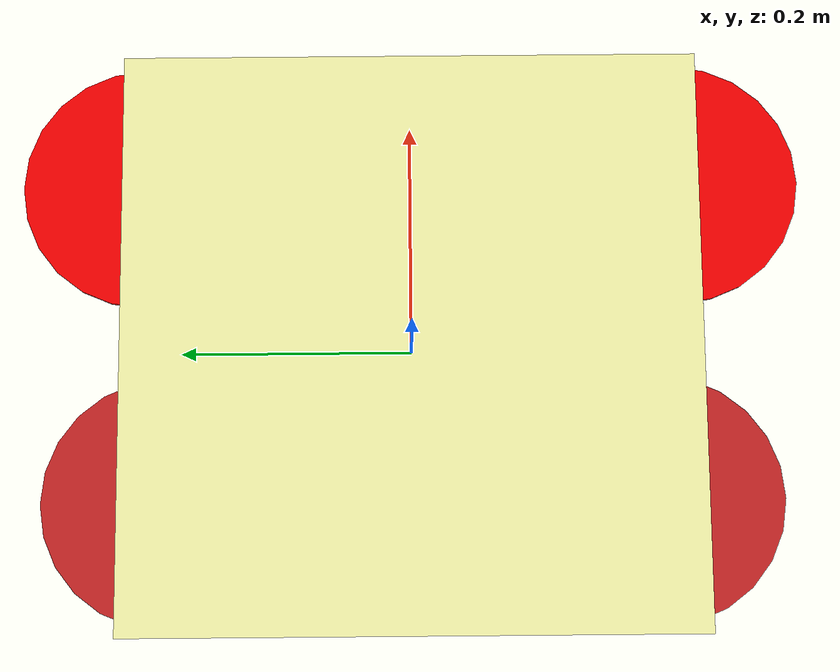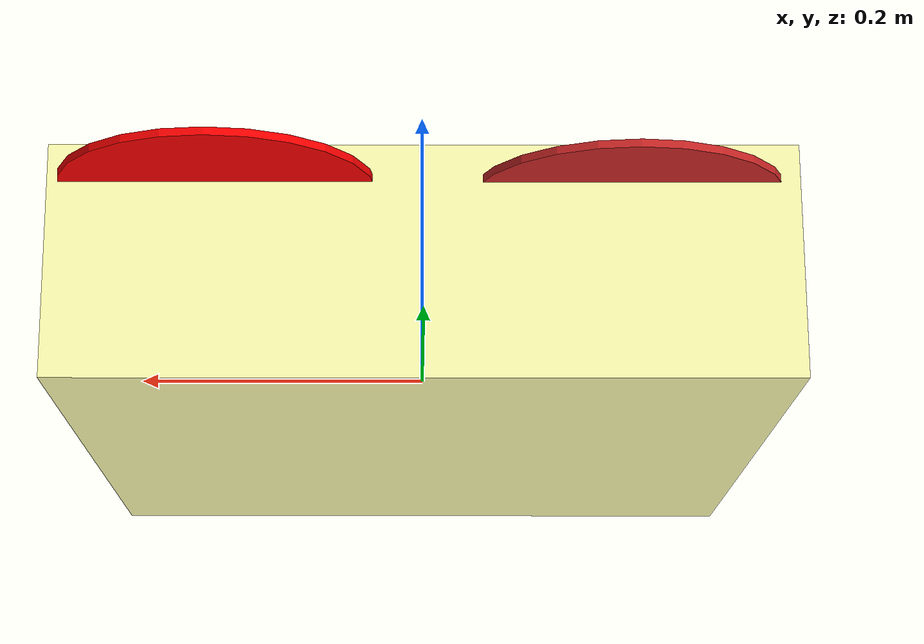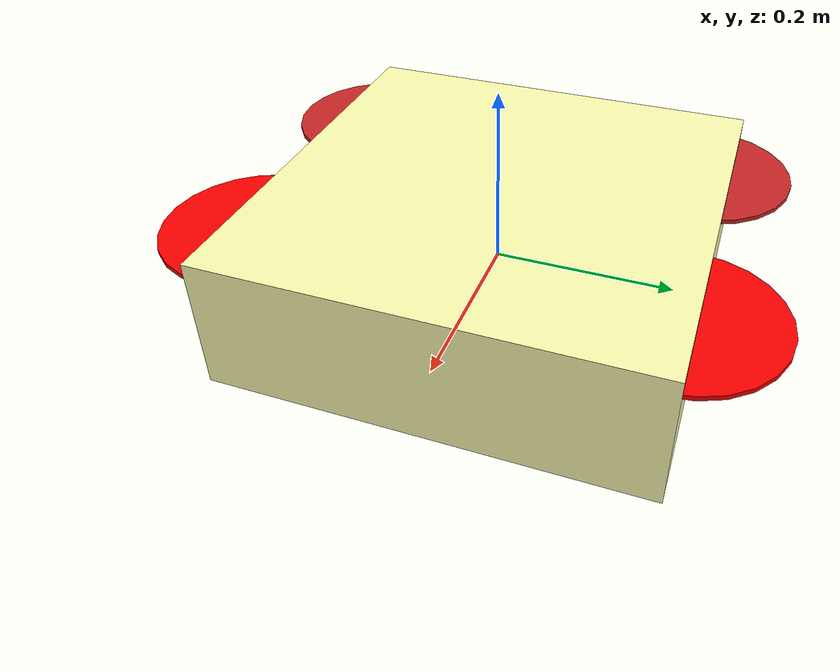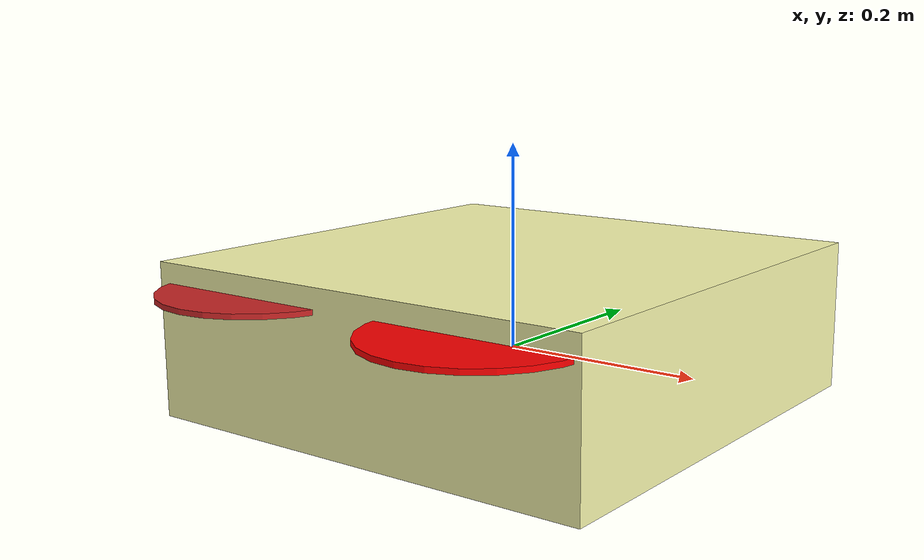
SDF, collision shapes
<?xml version="1.0" ?>
<sdf version="1.6">
    <model name="r2">
        <pose>0 0 0.05 0 0 0</pose>
        <link name="r2/base_link">
            <pose frame="">0 0 0 0 0 0</pose>
            <inertial>
                <pose frame="">0 0 0 0 -0 0</pose>
                <mass>1.5</mass>
                <inertia>
                    <ixx>0.0347563</ixx>
                    <ixy>0</ixy>
                    <ixz>0</ixz>
                    <iyy>0.07</iyy>
                    <iyz>0</iyz>
                    <izz>0.0977</izz>
                </inertia>
            </inertial>
            <collision name="r2/base_link_inertia_collision">
                <pose frame="">0 0 -0.03 0 0 0</pose>
                <geometry>
                    <box>
                        <size>0.47 0.47 0.15</size>
                    </box>
                </geometry>
            </collision>
            <visual name="r2/base_link_inertia_visual">
                <pose frame="base_frame">0 0 0 0 0 0</pose>
                <material>
                    <diffuse>1.0 1.0 0.7 1</diffuse>
                </material>
                <geometry>
                    <mesh>
                        <scale>1 1 1</scale>
                        <uri>meshes/x3.dae</uri>
                    </mesh>
                </geometry>
            </visual>
        </link>

        <link name="r2/rotor_0">
            <pose frame="">0.13 -0.22 0.023 0 -0 0</pose>
            <inertial>
                <pose frame="">0 0 0 0 -0 0</pose>
                <mass>0.005</mass>
                <inertia>
                    <ixx>9.75e-07</ixx>
                    <ixy>0</ixy>
                    <ixz>0</ixz>
                    <iyy>4.17041e-05</iyy>
                    <iyz>0</iyz>
                    <izz>4.26041e-05</izz>
                </inertia>
            </inertial>
            <collision name="r2/rotor_0_collision">
                <pose frame="">0 0 0 0 0 0</pose>
                <geometry>
                    <cylinder>
                        <length>0.005</length>
                        <radius>0.1</radius>
                    </cylinder>
                </geometry>
                <surface>
                    <contact>
                        <ode/>
                    </contact>
                    <friction>
                        <ode/>
                    </friction>
                </surface>
            </collision>
            <visual name="r2/rotor_0_visual">
                <pose frame="">0 0 0 0 -0 0</pose>
                <geometry>
                    <mesh>
                        <scale>0.1 0.1 0.1</scale>
                        <uri>meshes/propeller_ccw.dae</uri>
                    </mesh>
                </geometry>
                <material>
                    <diffuse>1 0 0 1</diffuse>
                </material>
            </visual>
            <gravity>1</gravity>
            <velocity_decay/>
        </link>
        <joint name="r2/rotor_0_joint" type="revolute">
            <child>r2/rotor_0</child>
            <parent>r2/base_link</parent>
            <axis>
                <xyz>0 0 1</xyz>
                <limit>
                    <lower>-1e+16</lower>
                    <upper>1e+16</upper>
                </limit>
                <dynamics>
                    <spring_reference>0</spring_reference>
                    <spring_stiffness>0</spring_stiffness>
                </dynamics>
                <use_parent_model_frame>1</use_parent_model_frame>
            </axis>
        </joint>
        <link name="r2/rotor_1">
            <pose frame="">-0.13 0.2 0.023 0 -0 0</pose>
            <inertial>
                <pose frame="">0 0 0 0 -0 0</pose>
                <mass>0.005</mass>
                <inertia>
                    <ixx>9.75e-07</ixx>
                    <ixy>0</ixy>
                    <ixz>0</ixz>
                    <iyy>4.17041e-05</iyy>
                    <iyz>0</iyz>
                    <izz>4.26041e-05</izz>
                </inertia>
            </inertial>
            <collision name="r2/rotor_1_collision">
                <pose frame="">0 0 0 0 -0 0</pose>
                <geometry>
                    <cylinder>
                        <length>0.005</length>
                        <radius>0.1</radius>
                    </cylinder>
                </geometry>
                <surface>
                    <contact>
                        <ode/>
                    </contact>
                    <friction>
                        <ode/>
                    </friction>
                </surface>
            </collision>
            <visual name="r2/rotor_1_visual">
                <pose frame="">0 0 0 0 -0 0</pose>
                <geometry>
                    <mesh>
                        <scale>0.1 0.1 0.1</scale>
                        <uri>meshes/propeller_ccw.dae</uri>
                    </mesh>
                </geometry>
                <material>
                    <script>
                        <name>Gazebo/Red</name>
                        <uri>file://media/materials/scripts/gazebo.material</uri>
                    </script>
                </material>
            </visual>
            <gravity>1</gravity>
            <velocity_decay/>
        </link>
        <joint name="r2/rotor_1_joint" type="revolute">
            <child>r2/rotor_1</child>
            <parent>r2/base_link</parent>
            <axis>
                <xyz>0 0 1</xyz>
                <limit>
                    <lower>-1e+16</lower>
                    <upper>1e+16</upper>
                </limit>
                <dynamics>
                    <spring_reference>0</spring_reference>
                    <spring_stiffness>0</spring_stiffness>
                </dynamics>
                <use_parent_model_frame>1</use_parent_model_frame>
            </axis>
        </joint>
        <link name="r2/rotor_2">
            <pose frame="">0.13 0.22 0.023 0 -0 0</pose>
            <inertial>
                <pose frame="">0 0 0 0 -0 0</pose>
                <mass>0.005</mass>
                <inertia>
                    <ixx>9.75e-07</ixx>
                    <ixy>0</ixy>
                    <ixz>0</ixz>
                    <iyy>4.17041e-05</iyy>
                    <iyz>0</iyz>
                    <izz>4.26041e-05</izz>
                </inertia>
            </inertial>
            <collision name="r2/rotor_2_collision">
                <pose frame="">0 0 0 0 -0 0</pose>
                <geometry>
                    <cylinder>
                        <length>0.005</length>
                        <radius>0.1</radius>
                    </cylinder>
                </geometry>
                <surface>
                    <contact>
                        <ode/>
                    </contact>
                    <friction>
                        <ode/>
                    </friction>
                </surface>
            </collision>
            <visual name="r2/rotor_2_visual">
                <pose frame="">0 0 0 0 -0 0</pose>
                <geometry>
                    <mesh>
                        <scale>0.1 0.1 0.1</scale>
                        <uri>meshes/propeller_ccw.dae</uri>
                    </mesh>
                </geometry>
                <material>
                    <diffuse>1 0 0 1</diffuse>
                </material>
            </visual>
            <gravity>1</gravity>
            <velocity_decay/>
        </link>
        <joint name="r2/rotor_2_joint" type="revolute">
            <child>r2/rotor_2</child>
            <parent>r2/base_link</parent>
            <axis>
                <xyz>0 0 1</xyz>
                <limit>
                    <lower>-1e+16</lower>
                    <upper>1e+16</upper>
                </limit>
                <dynamics>
                    <spring_reference>0</spring_reference>
                    <spring_stiffness>0</spring_stiffness>
                </dynamics>
                <use_parent_model_frame>1</use_parent_model_frame>
            </axis>
        </joint>
        <link name="r2/rotor_3">
            <pose frame="">-0.13 -0.2 0.023 0 -0 0</pose>
            <inertial>
                <pose frame="">0 0 0 0 -0 0</pose>
                <mass>0.005</mass>
                <inertia>
                    <ixx>9.75e-07</ixx>
                    <ixy>0</ixy>
                    <ixz>0</ixz>
                    <iyy>4.17041e-05</iyy>
                    <iyz>0</iyz>
                    <izz>4.26041e-05</izz>
                </inertia>
            </inertial>
            <collision name="r2/rotor_3_collision">
                <pose frame="">0 0 0 0 -0 0</pose>
                <geometry>
                    <cylinder>
                        <length>0.005</length>
                        <radius>0.1</radius>
                    </cylinder>
                </geometry>
                <surface>
                    <contact>
                        <ode/>
                    </contact>
                    <friction>
                        <ode/>
                    </friction>
                </surface>
            </collision>
            <visual name="r2/rotor_3_visual">
                <pose frame="">0 0 0 0 -0 0</pose>
                <geometry>
                    <mesh>
                        <scale>0.1 0.1 0.1</scale>
                        <uri>meshes/propeller_ccw.dae</uri>
                    </mesh>
                </geometry>
                <material>
                    <script>
                        <name>Gazebo/Red</name>
                        <uri>file://media/materials/scripts/gazebo.material</uri>
                    </script>
                </material>
            </visual>
            <gravity>1</gravity>
            <velocity_decay/>
        </link>
        <joint name="r2/rotor_3_joint" type="revolute">
            <child>r2/rotor_3</child>
            <parent>r2/base_link</parent>
            <axis>
                <xyz>0 0 1</xyz>
                <limit>
                    <lower>-1e+16</lower>
                    <upper>1e+16</upper>
                </limit>
                <dynamics>
                    <spring_reference>0</spring_reference>
                    <spring_stiffness>0</spring_stiffness>
                </dynamics>
                <use_parent_model_frame>1</use_parent_model_frame>
            </axis>
        </joint>

        <plugin
        filename="ignition-gazebo-multicopter-motor-model-system"
        name="gz::sim::systems::MulticopterMotorModel">
        <robotNamespace>r2</robotNamespace>
        <jointName>r2/rotor_0_joint</jointName>
        <linkName>r2/rotor_0</linkName>
        <turningDirection>ccw</turningDirection>
        <timeConstantUp>0.0125</timeConstantUp>
        <timeConstantDown>0.025</timeConstantDown>
        <maxRotVelocity>800.0</maxRotVelocity>
        <motorConstant>8.54858e-06</motorConstant>
        <momentConstant>0.016</momentConstant>
        <commandSubTopic>gazebo/command/motor_speed</commandSubTopic>
        <motorNumber>0</motorNumber>
        <rotorDragCoefficient>8.06428e-05</rotorDragCoefficient>
        <rollingMomentCoefficient>1e-06</rollingMomentCoefficient>
        <motorSpeedPubTopic>motor_speed/0</motorSpeedPubTopic>
        <rotorVelocitySlowdownSim>10</rotorVelocitySlowdownSim>
        <motorType>velocity</motorType>
      </plugin>
      <plugin
        filename="ignition-gazebo-multicopter-motor-model-system"
        name="gz::sim::systems::MulticopterMotorModel">
        <robotNamespace>r2</robotNamespace>
        <jointName>r2/rotor_1_joint</jointName>
        <linkName>r2/rotor_1</linkName>
        <turningDirection>ccw</turningDirection>
        <timeConstantUp>0.0125</timeConstantUp>
        <timeConstantDown>0.025</timeConstantDown>
        <maxRotVelocity>800.0</maxRotVelocity>
        <motorConstant>8.54858e-06</motorConstant>
        <momentConstant>0.016</momentConstant>
        <commandSubTopic>gazebo/command/motor_speed</commandSubTopic>
        <motorNumber>1</motorNumber>
        <rotorDragCoefficient>8.06428e-05</rotorDragCoefficient>
        <rollingMomentCoefficient>1e-06</rollingMomentCoefficient>
        <motorSpeedPubTopic>motor_speed/1</motorSpeedPubTopic>
        <rotorVelocitySlowdownSim>10</rotorVelocitySlowdownSim>
        <motorType>velocity</motorType>
      </plugin>
      <plugin
        filename="ignition-gazebo-multicopter-motor-model-system"
        name="gz::sim::systems::MulticopterMotorModel">
        <robotNamespace>r2</robotNamespace>
        <jointName>r2/rotor_2_joint</jointName>
        <linkName>r2/rotor_2</linkName>
        <turningDirection>cw</turningDirection>
        <timeConstantUp>0.0125</timeConstantUp>
        <timeConstantDown>0.025</timeConstantDown>
        <maxRotVelocity>800.0</maxRotVelocity>
        <motorConstant>8.54858e-06</motorConstant>
        <momentConstant>0.016</momentConstant>
        <commandSubTopic>gazebo/command/motor_speed</commandSubTopic>
        <motorNumber>2</motorNumber>
        <rotorDragCoefficient>8.06428e-05</rotorDragCoefficient>
        <rollingMomentCoefficient>1e-06</rollingMomentCoefficient>
        <motorSpeedPubTopic>motor_speed/2</motorSpeedPubTopic>
        <rotorVelocitySlowdownSim>10</rotorVelocitySlowdownSim>
        <motorType>velocity</motorType>
      </plugin>
      <plugin
        filename="ignition-gazebo-multicopter-motor-model-system"
        name="gz::sim::systems::MulticopterMotorModel">
        <robotNamespace>r2</robotNamespace>
        <jointName>r2/rotor_3_joint</jointName>
        <linkName>r2/rotor_3</linkName>
        <turningDirection>cw</turningDirection>
        <timeConstantUp>0.0125</timeConstantUp>
        <timeConstantDown>0.025</timeConstantDown>
        <maxRotVelocity>800.0</maxRotVelocity>
        <motorConstant>8.54858e-06</motorConstant>
        <momentConstant>0.016</momentConstant>
        <commandSubTopic>gazebo/command/motor_speed</commandSubTopic>
        <motorNumber>3</motorNumber>
        <rotorDragCoefficient>8.06428e-05</rotorDragCoefficient>
        <rollingMomentCoefficient>1e-06</rollingMomentCoefficient>
        <motorSpeedPubTopic>motor_speed/3</motorSpeedPubTopic>
        <rotorVelocitySlowdownSim>10</rotorVelocitySlowdownSim>
        <motorType>velocity</motorType>
      </plugin>
      <plugin
        filename="ignition-gazebo-multicopter-control-system"
        name="gz::sim::systems::MulticopterVelocityControl">
        <robotNamespace>r2</robotNamespace>
        <commandSubTopic>gazebo/command/twist</commandSubTopic>
        <enableSubTopic>enable</enableSubTopic>
        <comLinkName>r2/base_link</comLinkName>
        <velocityGain>2.7 2.7 2.7</velocityGain>
        <attitudeGain>2 3 0.15</attitudeGain>
        <angularRateGain>0.4 0.52 0.18</angularRateGain>
        <maximumLinearAcceleration>2 2 2</maximumLinearAcceleration>

        <rotorConfiguration>
          <rotor>
            <jointName>r2/rotor_0_joint</jointName>
            <forceConstant>8.54858e-06</forceConstant>
            <momentConstant>0.016</momentConstant>
            <direction>1</direction>
          </rotor>
          <rotor>
            <jointName>r2/rotor_1_joint</jointName>
            <forceConstant>8.54858e-06</forceConstant>
            <momentConstant>0.016</momentConstant>
            <direction>1</direction>
          </rotor>
          <rotor>
            <jointName>r2/rotor_2_joint</jointName>
            <forceConstant>8.54858e-06</forceConstant>
            <momentConstant>0.016</momentConstant>
            <direction>-1</direction>
          </rotor>
          <rotor>
            <jointName>r2/rotor_3_joint</jointName>
            <forceConstant>8.54858e-06</forceConstant>
            <momentConstant>0.016</momentConstant>
            <direction>-1</direction>
          </rotor>
        </rotorConfiguration>
      </plugin>
      <plugin
        filename="ignition-gazebo-odometry-publisher-system" name="ignition::gazebo::systems::OdometryPublisher">
        <dimensions>3</dimensions>
      </plugin>
    </model>

</sdf>
